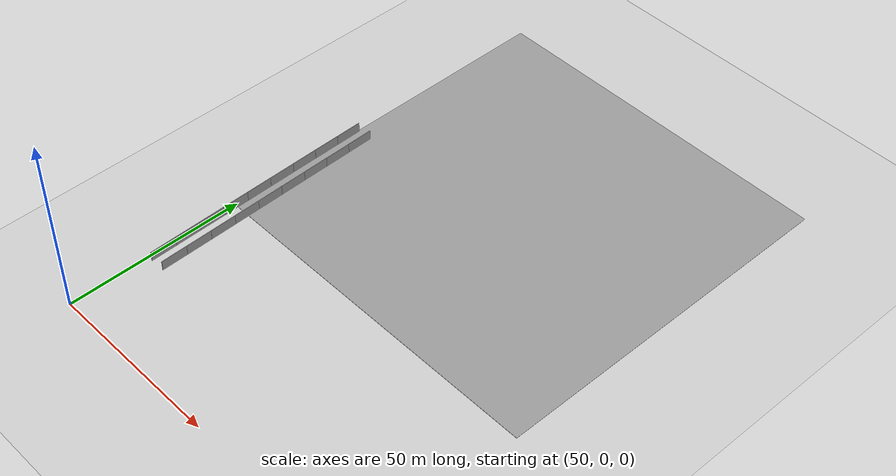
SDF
<sdf version="1.7">
 <world name="default">
  <model name="ground_plane">
   <static>1</static>
   <link name="link">
    <collision name="collision">
     <geometry><plane><normal>0 0 1</normal><size>100 100</size></plane></geometry>
     <surface><friction><ode><mu>100</mu><mu2>50</mu2></ode></friction></surface>
    </collision>
    <visual name="visual">
     <cast_shadows>0</cast_shadows>
     <geometry><plane><normal>0 0 1</normal><size>100 100</size></plane></geometry>
     <material>
      <script><uri>file://media/materials/scripts/gazebo.material</uri><name>Gazebo/Grey</name></script>
     </material>
    </visual>
   </link>
  </model>
  <model name="ground_plane_2">
   <static>1</static>
   <link name="link">
    <collision name="collision">
     <geometry><plane><normal>0 0 1</normal><size>100 100</size></plane></geometry>
     <surface><friction><ode><mu>100</mu><mu2>50</mu2></ode></friction></surface>
    </collision>
    <visual name="visual">
     <cast_shadows>0</cast_shadows>
     <geometry><plane><normal>0 0 1</normal><size>100 100</size></plane></geometry>
     <material>
      <script><uri>file://media/materials/scripts/gazebo.material</uri><name>Gazebo/Grey</name></script>
     </material>
    </visual>
   </link>
   <pose>99.9233 99.2771 0 0 -0 0</pose>
  </model>
  <model name="grey_wall_clone_8_clone_1">
   <static>1</static>
   <link name="link">
    <pose>0 0 1.4 0 -0 0</pose>
    <collision name="collision"><geometry><box><size>7.5 0.2 2.8</size></box></geometry></collision>
    <visual name="visual">
     <cast_shadows>0</cast_shadows>
     <geometry><box><size>7.5 0.2 2.8</size></box></geometry>
     <material>
      <script>
       <uri>model://grey_wall/materials/scripts</uri>
       <uri>model://grey_wall/materials/textures</uri>
       <name>vrc/grey_wall</name>
      </script>
     </material>
    </visual>
   </link>
   <pose>51.4463 26.3961 0 0 -0 1.59137</pose>
  </model>
  <model name="grey_wall_clone_8_clone_2">
   <static>1</static>
   <link name="link">
    <pose>0 0 1.4 0 -0 0</pose>
    <collision name="collision"><geometry><box><size>7.5 0.2 2.8</size></box></geometry></collision>
    <visual name="visual">
     <cast_shadows>0</cast_shadows>
     <geometry><box><size>7.5 0.2 2.8</size></box></geometry>
     <material>
      <script>
       <uri>model://grey_wall/materials/scripts</uri>
       <uri>model://grey_wall/materials/textures</uri>
       <name>vrc/grey_wall</name>
      </script>
     </material>
    </visual>
   </link>
   <pose>51.2894 33.8539 0 0 -0 1.59137</pose>
  </model>
  <model name="grey_wall_clone_8_clone_3">
   <static>1</static>
   <link name="link">
    <pose>0 0 1.4 0 -0 0</pose>
    <collision name="collision"><geometry><box><size>7.5 0.2 2.8</size></box></geometry></collision>
    <visual name="visual">
     <cast_shadows>0</cast_shadows>
     <geometry><box><size>7.5 0.2 2.8</size></box></geometry>
     <material>
      <script>
       <uri>model://grey_wall/materials/scripts</uri>
       <uri>model://grey_wall/materials/textures</uri>
       <name>vrc/grey_wall</name>
      </script>
     </material>
    </visual>
   </link>
   <pose>51.1359 41.3367 0 0 -0 1.59137</pose>
  </model>
  <model name="grey_wall_clone_8_clone_4">
   <static>1</static>
   <link name="link">
    <pose>0 0 1.4 0 -0 0</pose>
    <collision name="collision"><geometry><box><size>7.5 0.2 2.8</size></box></geometry></collision>
    <visual name="visual">
     <cast_shadows>0</cast_shadows>
     <geometry><box><size>7.5 0.2 2.8</size></box></geometry>
     <material>
      <script>
       <uri>model://grey_wall/materials/scripts</uri>
       <uri>model://grey_wall/materials/textures</uri>
       <name>vrc/grey_wall</name>
      </script>
     </material>
    </visual>
   </link>
   <pose>50.99 48.8327 0 0 -0 1.59137</pose>
  </model>
  <model name="grey_wall_clone_8_clone_5">
   <static>1</static>
   <link name="link">
    <pose>0 0 1.4 0 -0 0</pose>
    <collision name="collision"><geometry><box><size>7.5 0.2 2.8</size></box></geometry></collision>
    <visual name="visual">
     <cast_shadows>0</cast_shadows>
     <geometry><box><size>7.5 0.2 2.8</size></box></geometry>
     <material>
      <script>
       <uri>model://grey_wall/materials/scripts</uri>
       <uri>model://grey_wall/materials/textures</uri>
       <name>vrc/grey_wall</name>
      </script>
     </material>
    </visual>
   </link>
   <pose>50.8329 56.2723 0 0 -0 1.59137</pose>
  </model>
  <model name="grey_wall_clone_8_clone_6">
   <static>1</static>
   <link name="link">
    <pose>0 0 1.4 0 -0 0</pose>
    <collision name="collision"><geometry><box><size>7.5 0.2 2.8</size></box></geometry></collision>
    <visual name="visual">
     <cast_shadows>0</cast_shadows>
     <geometry><box><size>7.5 0.2 2.8</size></box></geometry>
     <material>
      <script>
       <uri>model://grey_wall/materials/scripts</uri>
       <uri>model://grey_wall/materials/textures</uri>
       <name>vrc/grey_wall</name>
      </script>
     </material>
    </visual>
   </link>
   <pose>50.6922 63.7482 0 0 -0 1.59137</pose>
  </model>
  <model name="grey_wall_clone_8_clone_7">
   <static>1</static>
   <link name="link">
    <pose>0 0 1.4 0 -0 0</pose>
    <collision name="collision"><geometry><box><size>7.5 0.2 2.8</size></box></geometry></collision>
    <visual name="visual">
     <cast_shadows>0</cast_shadows>
     <geometry><box><size>7.5 0.2 2.8</size></box></geometry>
     <material>
      <script>
       <uri>model://grey_wall/materials/scripts</uri>
       <uri>model://grey_wall/materials/textures</uri>
       <name>vrc/grey_wall</name>
      </script>
     </material>
    </visual>
   </link>
   <pose>50.5227 71.2335 0 0 -0 1.59137</pose>
  </model>
  <model name="grey_wall_clone_8_clone_8">
   <static>1</static>
   <link name="link">
    <pose>0 0 1.4 0 -0 0</pose>
    <collision name="collision"><geometry><box><size>7.5 0.2 2.8</size></box></geometry></collision>
    <visual name="visual">
     <cast_shadows>0</cast_shadows>
     <geometry><box><size>7.5 0.2 2.8</size></box></geometry>
     <material>
      <script>
       <uri>model://grey_wall/materials/scripts</uri>
       <uri>model://grey_wall/materials/textures</uri>
       <name>vrc/grey_wall</name>
      </script>
     </material>
    </visual>
   </link>
   <pose>50.385 78.6478 0 0 -0 1.59137</pose>
  </model>
  <model name="grey_wall_clone_8_clone_9">
   <static>1</static>
   <link name="link">
    <pose>0 0 1.4 0 -0 0</pose>
    <collision name="collision"><geometry><box><size>7.5 0.2 2.8</size></box></geometry></collision>
    <visual name="visual">
     <cast_shadows>0</cast_shadows>
     <geometry><box><size>7.5 0.2 2.8</size></box></geometry>
     <material>
      <script>
       <uri>model://grey_wall/materials/scripts</uri>
       <uri>model://grey_wall/materials/textures</uri>
       <name>vrc/grey_wall</name>
      </script>
     </material>
    </visual>
   </link>
   <pose>50.2557 86.1318 0 0 -0 1.59137</pose>
  </model>
  <model name="grey_wall_clone_8_clone_12">
   <static>1</static>
   <link name="link">
    <pose>0 0 1.4 0 -0 0</pose>
    <collision name="collision"><geometry><box><size>7.5 0.2 2.8</size></box></geometry></collision>
    <visual name="visual">
     <cast_shadows>0</cast_shadows>
     <geometry><box><size>7.5 0.2 2.8</size></box></geometry>
     <material>
      <script>
       <uri>model://grey_wall/materials/scripts</uri>
       <uri>model://grey_wall/materials/textures</uri>
       <name>vrc/grey_wall</name>
      </script>
     </material>
    </visual>
   </link>
   <pose>55.7363 26.4782 0 0 -0 1.59137</pose>
  </model>
  <model name="grey_wall_clone_8_clone_13">
   <static>1</static>
   <link name="link">
    <pose>0 0 1.4 0 -0 0</pose>
    <collision name="collision"><geometry><box><size>7.5 0.2 2.8</size></box></geometry></collision>
    <visual name="visual">
     <cast_shadows>0</cast_shadows>
     <geometry><box><size>7.5 0.2 2.8</size></box></geometry>
     <material>
      <script>
       <uri>model://grey_wall/materials/scripts</uri>
       <uri>model://grey_wall/materials/textures</uri>
       <name>vrc/grey_wall</name>
      </script>
     </material>
    </visual>
   </link>
   <pose>55.5922 33.9518 0 0 -0 1.59137</pose>
  </model>
  <model name="grey_wall_clone_8_clone_14">
   <static>1</static>
   <link name="link">
    <pose>0 0 1.4 0 -0 0</pose>
    <collision name="collision"><geometry><box><size>7.5 0.2 2.8</size></box></geometry></collision>
    <visual name="visual">
     <cast_shadows>0</cast_shadows>
     <geometry><box><size>7.5 0.2 2.8</size></box></geometry>
     <material>
      <script>
       <uri>model://grey_wall/materials/scripts</uri>
       <uri>model://grey_wall/materials/textures</uri>
       <name>vrc/grey_wall</name>
      </script>
     </material>
    </visual>
   </link>
   <pose>55.4328 41.4616 0 0 -0 1.59137</pose>
  </model>
  <model name="grey_wall_clone_8_clone_15">
   <static>1</static>
   <link name="link">
    <pose>0 0 1.4 0 -0 0</pose>
    <collision name="collision"><geometry><box><size>7.5 0.2 2.8</size></box></geometry></collision>
    <visual name="visual">
     <cast_shadows>0</cast_shadows>
     <geometry><box><size>7.5 0.2 2.8</size></box></geometry>
     <material>
      <script>
       <uri>model://grey_wall/materials/scripts</uri>
       <uri>model://grey_wall/materials/textures</uri>
       <name>vrc/grey_wall</name>
      </script>
     </material>
    </visual>
   </link>
   <pose>55.2541 48.9677 0 0 -0 1.59137</pose>
  </model>
  <model name="grey_wall_clone_8_clone_16">
   <static>1</static>
   <link name="link">
    <pose>0 0 1.4 0 -0 0</pose>
    <collision name="collision"><geometry><box><size>7.5 0.2 2.8</size></box></geometry></collision>
    <visual name="visual">
     <cast_shadows>0</cast_shadows>
     <geometry><box><size>7.5 0.2 2.8</size></box></geometry>
     <material>
      <script>
       <uri>model://grey_wall/materials/scripts</uri>
       <uri>model://grey_wall/materials/textures</uri>
       <name>vrc/grey_wall</name>
      </script>
     </material>
    </visual>
   </link>
   <pose>55.096 56.4117 0 0 -0 1.59137</pose>
  </model>
  <model name="grey_wall_clone_8_clone_17">
   <static>1</static>
   <link name="link">
    <pose>0 0 1.4 0 -0 0</pose>
    <collision name="collision"><geometry><box><size>7.5 0.2 2.8</size></box></geometry></collision>
    <visual name="visual">
     <cast_shadows>0</cast_shadows>
     <geometry><box><size>7.5 0.2 2.8</size></box></geometry>
     <material>
      <script>
       <uri>model://grey_wall/materials/scripts</uri>
       <uri>model://grey_wall/materials/textures</uri>
       <name>vrc/grey_wall</name>
      </script>
     </material>
    </visual>
   </link>
   <pose>54.937 63.9085 0 0 -0 1.59137</pose>
  </model>
  <model name="grey_wall_clone_8_clone_18">
   <static>1</static>
   <link name="link">
    <pose>0 0 1.4 0 -0 0</pose>
    <collision name="collision"><geometry><box><size>7.5 0.2 2.8</size></box></geometry></collision>
    <visual name="visual">
     <cast_shadows>0</cast_shadows>
     <geometry><box><size>7.5 0.2 2.8</size></box></geometry>
     <material>
      <script>
       <uri>model://grey_wall/materials/scripts</uri>
       <uri>model://grey_wall/materials/textures</uri>
       <name>vrc/grey_wall</name>
      </script>
     </material>
    </visual>
   </link>
   <pose>54.7627 71.3613 0 0 -0 1.59137</pose>
  </model>
  <model name="grey_wall_clone_8_clone_19">
   <static>1</static>
   <link name="link">
    <pose>0 0 1.4 0 -0 0</pose>
    <collision name="collision"><geometry><box><size>7.5 0.2 2.8</size></box></geometry></collision>
    <visual name="visual">
     <cast_shadows>0</cast_shadows>
     <geometry><box><size>7.5 0.2 2.8</size></box></geometry>
     <material>
      <script>
       <uri>model://grey_wall/materials/scripts</uri>
       <uri>model://grey_wall/materials/textures</uri>
       <name>vrc/grey_wall</name>
      </script>
     </material>
    </visual>
   </link>
   <pose>54.6332 78.7954 0 0 -0 1.59137</pose>
  </model>
  <model name="grey_wall_clone_8_clone_20">
   <static>1</static>
   <link name="link">
    <pose>0 0 1.4 0 -0 0</pose>
    <collision name="collision"><geometry><box><size>7.5 0.2 2.8</size></box></geometry></collision>
    <visual name="visual">
     <cast_shadows>0</cast_shadows>
     <geometry><box><size>7.5 0.2 2.8</size></box></geometry>
     <material>
      <script>
       <uri>model://grey_wall/materials/scripts</uri>
       <uri>model://grey_wall/materials/textures</uri>
       <name>vrc/grey_wall</name>
      </script>
     </material>
    </visual>
   </link>
   <pose>54.457 86.2764 0 0 -0 1.59137</pose>
  </model>
 </world>
</sdf>
